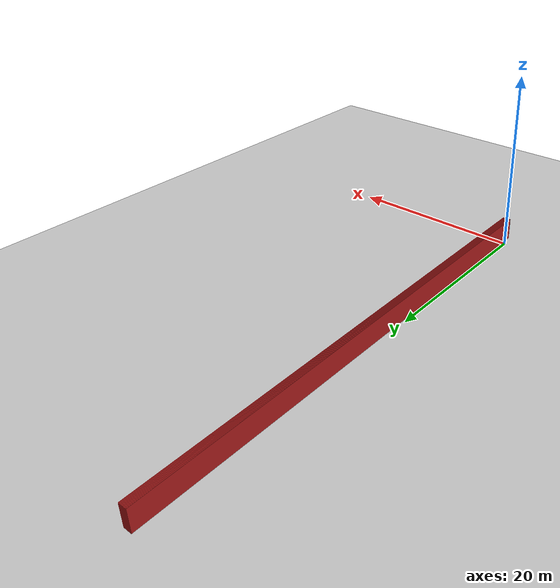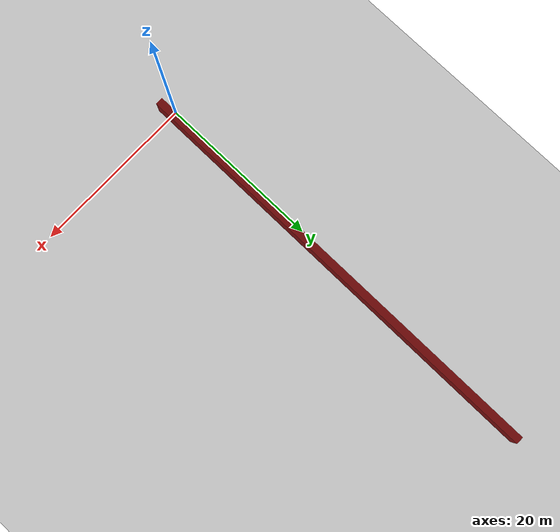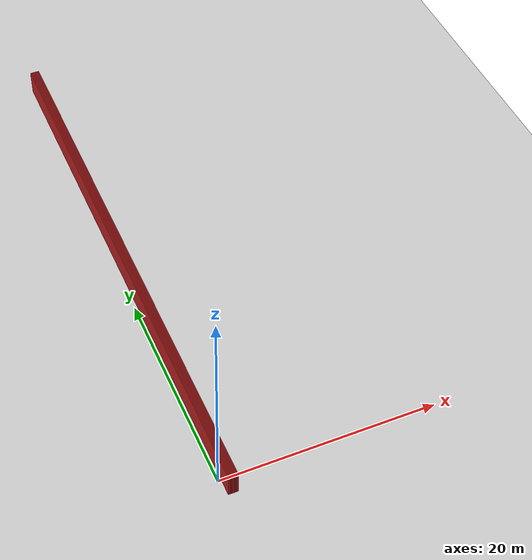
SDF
<sdf version="1.4">
 <world name="1_wall">
  <model name="ground_plane">
   <static>1</static>
   <link name="link">
    <collision name="collision">
     <geometry><plane><normal>0 0 1</normal><size>1000 1000</size></plane></geometry>
     <surface><friction><ode><mu>100</mu><mu2>50</mu2></ode></friction></surface>
    </collision>
    <visual name="visual">
     <cast_shadows>0</cast_shadows>
     <geometry><plane><normal>0 0 1</normal><size>10000 10000</size></plane></geometry>
     <material>
      <script><uri>file://media/materials/scripts/gazebo.material</uri><name>Gazebo/Grey</name></script>
     </material>
    </visual>
    <velocity_decay><linear>0</linear><angular>0</angular></velocity_decay>
   </link>
  </model>
  <model name="Wall_36">
   <static>1</static>
   <link name="Wall_36">
    <collision name="Wall_Collision_36">
     <geometry><box><size>53.65 0.05 2.5</size></box></geometry>
     <pose>0 0 1.25 0 -0 0</pose>
    </collision>
    <visual name="Wall_Visual_36">
     <pose>0 0 1.25 0 -0 0</pose>
     <geometry><box><size>53.65 0.05 2.5</size></box></geometry>
     <material>
      <script><uri>file://media/materials/scripts/gazebo.material</uri><name>Gazebo/Red</name></script>
     </material>
    </visual>
    <velocity_decay><linear>0</linear><angular>0</angular></velocity_decay>
    <pose>0.3 25.3 0 0 0 1.5707963267948966</pose>
   </link>
  </model>
  <model name="Wall_37">
   <static>1</static>
   <link name="Wall_37">
    <collision name="Wall_Collision_37">
     <geometry><box><size>53.65 0.05 2.5</size></box></geometry>
     <pose>0 0 1.25 0 -0 0</pose>
    </collision>
    <visual name="Wall_Visual_37">
     <pose>0 0 1.25 0 -0 0</pose>
     <geometry><box><size>53.65 0.05 2.5</size></box></geometry>
     <material>
      <script><uri>file://media/materials/scripts/gazebo.material</uri><name>Gazebo/Red</name></script>
     </material>
    </visual>
    <velocity_decay><linear>0</linear><angular>0</angular></velocity_decay>
    <pose>0.35 25.3 0 0 0 1.5707963267948966</pose>
   </link>
  </model>
  <model name="Wall_38">
   <static>1</static>
   <link name="Wall_38">
    <collision name="Wall_Collision_38">
     <geometry><box><size>53.65 0.05 2.5</size></box></geometry>
     <pose>0 0 1.25 0 -0 0</pose>
    </collision>
    <visual name="Wall_Visual_38">
     <pose>0 0 1.25 0 -0 0</pose>
     <geometry><box><size>53.65 0.05 2.5</size></box></geometry>
     <material>
      <script><uri>file://media/materials/scripts/gazebo.material</uri><name>Gazebo/Red</name></script>
     </material>
    </visual>
    <velocity_decay><linear>0</linear><angular>0</angular></velocity_decay>
    <pose>0.4 25.3 0 0 0 1.5707963267948966</pose>
   </link>
  </model>
  <model name="Wall_39">
   <static>1</static>
   <link name="Wall_39">
    <collision name="Wall_Collision_39">
     <geometry><box><size>53.65 0.05 2.5</size></box></geometry>
     <pose>0 0 1.25 0 -0 0</pose>
    </collision>
    <visual name="Wall_Visual_39">
     <pose>0 0 1.25 0 -0 0</pose>
     <geometry><box><size>53.65 0.05 2.5</size></box></geometry>
     <material>
      <script><uri>file://media/materials/scripts/gazebo.material</uri><name>Gazebo/Red</name></script>
     </material>
    </visual>
    <velocity_decay><linear>0</linear><angular>0</angular></velocity_decay>
    <pose>0.45 25.3 0 0 0 1.5707963267948966</pose>
   </link>
  </model>
  <model name="Wall_40">
   <static>1</static>
   <link name="Wall_40">
    <collision name="Wall_Collision_40">
     <geometry><box><size>53.65 0.05 2.5</size></box></geometry>
     <pose>0 0 1.25 0 -0 0</pose>
    </collision>
    <visual name="Wall_Visual_40">
     <pose>0 0 1.25 0 -0 0</pose>
     <geometry><box><size>53.65 0.05 2.5</size></box></geometry>
     <material>
      <script><uri>file://media/materials/scripts/gazebo.material</uri><name>Gazebo/Red</name></script>
     </material>
    </visual>
    <velocity_decay><linear>0</linear><angular>0</angular></velocity_decay>
    <pose>0.5 25.3 0 0 0 1.5707963267948966</pose>
   </link>
  </model>
  <model name="Wall_41">
   <static>1</static>
   <link name="Wall_41">
    <collision name="Wall_Collision_41">
     <geometry><box><size>53.65 0.05 2.5</size></box></geometry>
     <pose>0 0 1.25 0 -0 0</pose>
    </collision>
    <visual name="Wall_Visual_41">
     <pose>0 0 1.25 0 -0 0</pose>
     <geometry><box><size>53.65 0.05 2.5</size></box></geometry>
     <material>
      <script><uri>file://media/materials/scripts/gazebo.material</uri><name>Gazebo/Red</name></script>
     </material>
    </visual>
    <velocity_decay><linear>0</linear><angular>0</angular></velocity_decay>
    <pose>0.55 25.3 0 0 0 1.5707963267948966</pose>
   </link>
  </model>
  <model name="Wall_42">
   <static>1</static>
   <link name="Wall_42">
    <collision name="Wall_Collision_42">
     <geometry><box><size>53.65 0.05 2.5</size></box></geometry>
     <pose>0 0 1.25 0 -0 0</pose>
    </collision>
    <visual name="Wall_Visual_42">
     <pose>0 0 1.25 0 -0 0</pose>
     <geometry><box><size>53.65 0.05 2.5</size></box></geometry>
     <material>
      <script><uri>file://media/materials/scripts/gazebo.material</uri><name>Gazebo/Red</name></script>
     </material>
    </visual>
    <velocity_decay><linear>0</linear><angular>0</angular></velocity_decay>
    <pose>0.6 25.3 0 0 0 1.5707963267948966</pose>
   </link>
  </model>
  <model name="Wall_43">
   <static>1</static>
   <link name="Wall_43">
    <collision name="Wall_Collision_43">
     <geometry><box><size>53.65 0.05 2.5</size></box></geometry>
     <pose>0 0 1.25 0 -0 0</pose>
    </collision>
    <visual name="Wall_Visual_43">
     <pose>0 0 1.25 0 -0 0</pose>
     <geometry><box><size>53.65 0.05 2.5</size></box></geometry>
     <material>
      <script><uri>file://media/materials/scripts/gazebo.material</uri><name>Gazebo/Red</name></script>
     </material>
    </visual>
    <velocity_decay><linear>0</linear><angular>0</angular></velocity_decay>
    <pose>0.65 25.3 0 0 0 1.5707963267948966</pose>
   </link>
  </model>
  <model name="Wall_44">
   <static>1</static>
   <link name="Wall_44">
    <collision name="Wall_Collision_44">
     <geometry><box><size>53.65 0.05 2.5</size></box></geometry>
     <pose>0 0 1.25 0 -0 0</pose>
    </collision>
    <visual name="Wall_Visual_44">
     <pose>0 0 1.25 0 -0 0</pose>
     <geometry><box><size>53.65 0.05 2.5</size></box></geometry>
     <material>
      <script><uri>file://media/materials/scripts/gazebo.material</uri><name>Gazebo/Red</name></script>
     </material>
    </visual>
    <velocity_decay><linear>0</linear><angular>0</angular></velocity_decay>
    <pose>0.7 25.3 0 0 0 1.5707963267948966</pose>
   </link>
  </model>
  <model name="Wall_45">
   <static>1</static>
   <link name="Wall_45">
    <collision name="Wall_Collision_45">
     <geometry><box><size>53.65 0.05 2.5</size></box></geometry>
     <pose>0 0 1.25 0 -0 0</pose>
    </collision>
    <visual name="Wall_Visual_45">
     <pose>0 0 1.25 0 -0 0</pose>
     <geometry><box><size>53.65 0.05 2.5</size></box></geometry>
     <material>
      <script><uri>file://media/materials/scripts/gazebo.material</uri><name>Gazebo/Red</name></script>
     </material>
    </visual>
    <velocity_decay><linear>0</linear><angular>0</angular></velocity_decay>
    <pose>0.75 25.3 0 0 0 1.5707963267948966</pose>
   </link>
  </model>
  <model name="Wall_46">
   <static>1</static>
   <link name="Wall_46">
    <collision name="Wall_Collision_46">
     <geometry><box><size>53.65 0.05 2.5</size></box></geometry>
     <pose>0 0 1.25 0 -0 0</pose>
    </collision>
    <visual name="Wall_Visual_46">
     <pose>0 0 1.25 0 -0 0</pose>
     <geometry><box><size>53.65 0.05 2.5</size></box></geometry>
     <material>
      <script><uri>file://media/materials/scripts/gazebo.material</uri><name>Gazebo/Red</name></script>
     </material>
    </visual>
    <velocity_decay><linear>0</linear><angular>0</angular></velocity_decay>
    <pose>0.8 25.3 0 0 0 1.5707963267948966</pose>
   </link>
  </model>
  <model name="Wall_47">
   <static>1</static>
   <link name="Wall_47">
    <collision name="Wall_Collision_47">
     <geometry><box><size>53.65 0.05 2.5</size></box></geometry>
     <pose>0 0 1.25 0 -0 0</pose>
    </collision>
    <visual name="Wall_Visual_47">
     <pose>0 0 1.25 0 -0 0</pose>
     <geometry><box><size>53.65 0.05 2.5</size></box></geometry>
     <material>
      <script><uri>file://media/materials/scripts/gazebo.material</uri><name>Gazebo/Red</name></script>
     </material>
    </visual>
    <velocity_decay><linear>0</linear><angular>0</angular></velocity_decay>
    <pose>0.85 25.3 0 0 0 1.5707963267948966</pose>
   </link>
  </model>
  <model name="Wall_48">
   <static>1</static>
   <link name="Wall_48">
    <collision name="Wall_Collision_48">
     <geometry><box><size>53.65 0.05 2.5</size></box></geometry>
     <pose>0 0 1.25 0 -0 0</pose>
    </collision>
    <visual name="Wall_Visual_48">
     <pose>0 0 1.25 0 -0 0</pose>
     <geometry><box><size>53.65 0.05 2.5</size></box></geometry>
     <material>
      <script><uri>file://media/materials/scripts/gazebo.material</uri><name>Gazebo/Red</name></script>
     </material>
    </visual>
    <velocity_decay><linear>0</linear><angular>0</angular></velocity_decay>
    <pose>0.9 25.3 0 0 0 1.5707963267948966</pose>
   </link>
  </model>
  <model name="Wall_49">
   <static>1</static>
   <link name="Wall_49">
    <collision name="Wall_Collision_49">
     <geometry><box><size>53.65 0.05 2.5</size></box></geometry>
     <pose>0 0 1.25 0 -0 0</pose>
    </collision>
    <visual name="Wall_Visual_49">
     <pose>0 0 1.25 0 -0 0</pose>
     <geometry><box><size>53.65 0.05 2.5</size></box></geometry>
     <material>
      <script><uri>file://media/materials/scripts/gazebo.material</uri><name>Gazebo/Red</name></script>
     </material>
    </visual>
    <velocity_decay><linear>0</linear><angular>0</angular></velocity_decay>
    <pose>0.95 25.3 0 0 0 1.5707963267948966</pose>
   </link>
  </model>
  <model name="Wall_50">
   <static>1</static>
   <link name="Wall_50">
    <collision name="Wall_Collision_50">
     <geometry><box><size>53.65 0.05 2.5</size></box></geometry>
     <pose>0 0 1.25 0 -0 0</pose>
    </collision>
    <visual name="Wall_Visual_50">
     <pose>0 0 1.25 0 -0 0</pose>
     <geometry><box><size>53.65 0.05 2.5</size></box></geometry>
     <material>
      <script><uri>file://media/materials/scripts/gazebo.material</uri><name>Gazebo/Red</name></script>
     </material>
    </visual>
    <velocity_decay><linear>0</linear><angular>0</angular></velocity_decay>
    <pose>1.0 25.3 0 0 0 1.5707963267948966</pose>
   </link>
  </model>
  <model name="Wall_51">
   <static>1</static>
   <link name="Wall_51">
    <collision name="Wall_Collision_51">
     <geometry><box><size>53.65 0.05 2.5</size></box></geometry>
     <pose>0 0 1.25 0 -0 0</pose>
    </collision>
    <visual name="Wall_Visual_51">
     <pose>0 0 1.25 0 -0 0</pose>
     <geometry><box><size>53.65 0.05 2.5</size></box></geometry>
     <material>
      <script><uri>file://media/materials/scripts/gazebo.material</uri><name>Gazebo/Red</name></script>
     </material>
    </visual>
    <velocity_decay><linear>0</linear><angular>0</angular></velocity_decay>
    <pose>1.05 25.3 0 0 0 1.5707963267948966</pose>
   </link>
  </model>
  <model name="Wall_52">
   <static>1</static>
   <link name="Wall_52">
    <collision name="Wall_Collision_52">
     <geometry><box><size>53.65 0.05 2.5</size></box></geometry>
     <pose>0 0 1.25 0 -0 0</pose>
    </collision>
    <visual name="Wall_Visual_52">
     <pose>0 0 1.25 0 -0 0</pose>
     <geometry><box><size>53.65 0.05 2.5</size></box></geometry>
     <material>
      <script><uri>file://media/materials/scripts/gazebo.material</uri><name>Gazebo/Red</name></script>
     </material>
    </visual>
    <velocity_decay><linear>0</linear><angular>0</angular></velocity_decay>
    <pose>1.1 25.3 0 0 0 1.5707963267948966</pose>
   </link>
  </model>
  <model name="Wall_53">
   <static>1</static>
   <link name="Wall_53">
    <collision name="Wall_Collision_53">
     <geometry><box><size>53.65 0.05 2.5</size></box></geometry>
     <pose>0 0 1.25 0 -0 0</pose>
    </collision>
    <visual name="Wall_Visual_53">
     <pose>0 0 1.25 0 -0 0</pose>
     <geometry><box><size>53.65 0.05 2.5</size></box></geometry>
     <material>
      <script><uri>file://media/materials/scripts/gazebo.material</uri><name>Gazebo/Red</name></script>
     </material>
    </visual>
    <velocity_decay><linear>0</linear><angular>0</angular></velocity_decay>
    <pose>1.15 25.3 0 0 0 1.5707963267948966</pose>
   </link>
  </model>
 </world>
</sdf>
